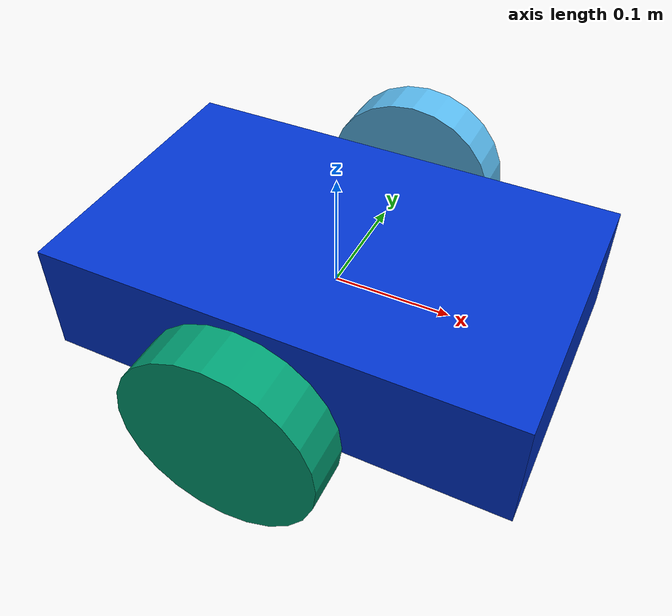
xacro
<?xml version="1.0"?>
<robot xmlns:xacro="http://www.ros.org/wiki/xacro" name="diffbot">

  <!-- Base Link -->
  <link name="base_link">
    <visual>
      <geometry>
        <box size="0.4 0.25 0.1"/>
      </geometry>
      <material name="blue">
        <color rgba="0.0 0.2 0.8 1.0"/>
      </material>
    </visual>
    <collision>
      <geometry>
        <box size="0.4 0.25 0.1"/>
      </geometry>
    </collision>
    <inertial>
      <mass value="5.0"/>
      <inertia ixx="0.03" ixy="0.0" ixz="0.0" iyy="0.07" iyz="0.0" izz="0.09"/>
    </inertial>
  </link>

  <!-- Left Wheel Joint -->
  <joint name="left_wheel_joint" type="continuous">
    <parent link="base_link"/>
    <child link="left_wheel_link"/>
    <origin xyz="0.0 0.175 0.0" rpy="-1.5708 0 0"/>
    <axis xyz="0 0 1"/>
    <dynamics damping="0.1" friction="0.1"/>
  </joint>

  <!-- Left Wheel Link -->
  <link name="left_wheel_link">
    <visual>
      <geometry>
        <cylinder length="0.04" radius="0.08"/>
      </geometry>
    </visual>
    <inertial>
      <mass value="0.8"/>
      <inertia ixx="0.001" ixy="0.0" ixz="0.0" iyy="0.001" iyz="0.0" izz="0.002"/>
    </inertial>
  </link>

  <!-- Right Wheel Joint -->
  <joint name="right_wheel_joint" type="continuous">
    <parent link="base_link"/>
    <child link="right_wheel_link"/>
    <origin xyz="0.0 -0.175 0.0" rpy="-1.5708 0 0"/>
    <axis xyz="0 0 1"/>
    <dynamics damping="0.1" friction="0.1"/>
  </joint>

  <!-- Right Wheel Link -->
  <link name="right_wheel_link">
    <visual>
      <geometry>
        <cylinder length="0.04" radius="0.08"/>
      </geometry>
    </visual>
    <inertial>
      <mass value="0.8"/>
      <inertia ixx="0.001" ixy="0.0" ixz="0.0" iyy="0.001" iyz="0.0" izz="0.002"/>
    </inertial>
  </link>

</robot>
